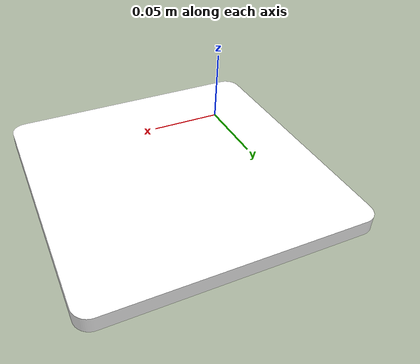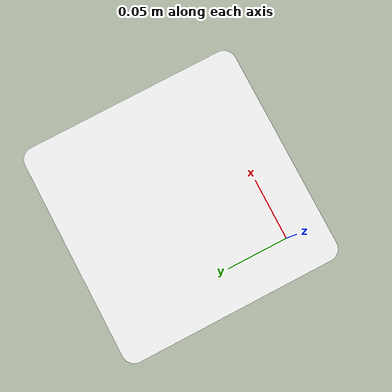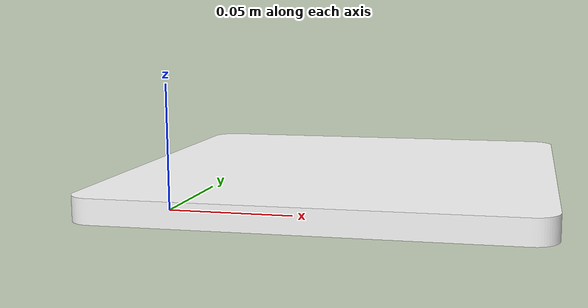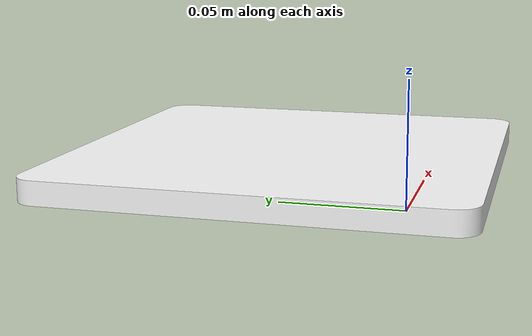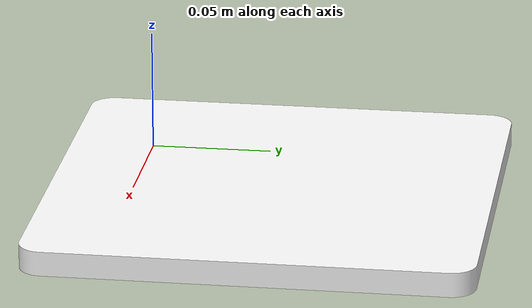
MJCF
<mujoco model="checkerboard">
  <default>
    <default class="visual">
      <geom group="2" type="mesh" contype="0" conaffinity="0" />
    </default>
    <default class="collision">
      <geom group="3" type="mesh" />
    </default>
  </default>
  <asset>
    <material name="0.000000_0.000000_0.000000_0.000000_0.000000" specular="0.0" shininess="0.0" rgba="0.0000 0.0000 0.0000 1" />
    <material name="1.000000_1.000000_1.000000_0.000000_0.000000" specular="0.0" shininess="0.0" rgba="1 1 1 1" />
    <mesh file="checkerboard_0.obj" />
    <mesh file="checkerboard_1.obj" />
  </asset>
  <worldbody>
    <body name="checkerboard">
      <freejoint />
      <geom mesh="checkerboard_0" material="0.000000_0.000000_0.000000_0.000000_0.000000" class="visual" />
      <geom mesh="checkerboard_1" material="1.000000_1.000000_1.000000_0.000000_0.000000" class="visual" />
      <geom mesh="checkerboard_0" class="collision" />
      <geom mesh="checkerboard_1" class="collision" />
    </body>

  </worldbody>
</mujoco>
